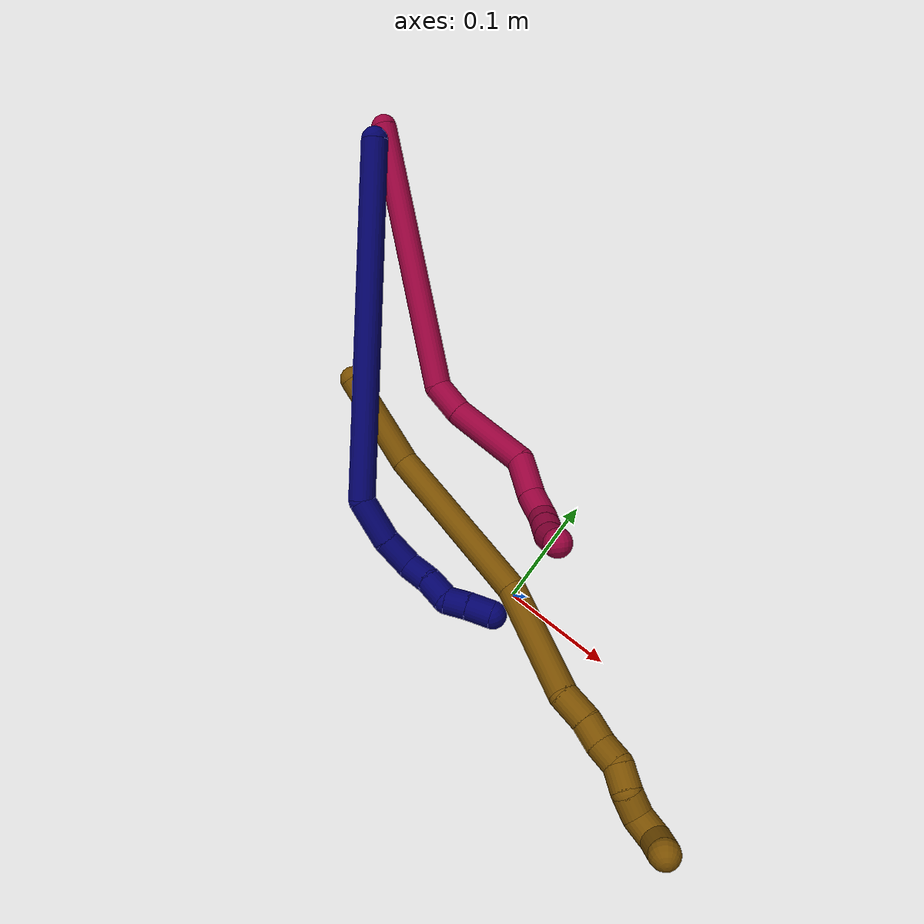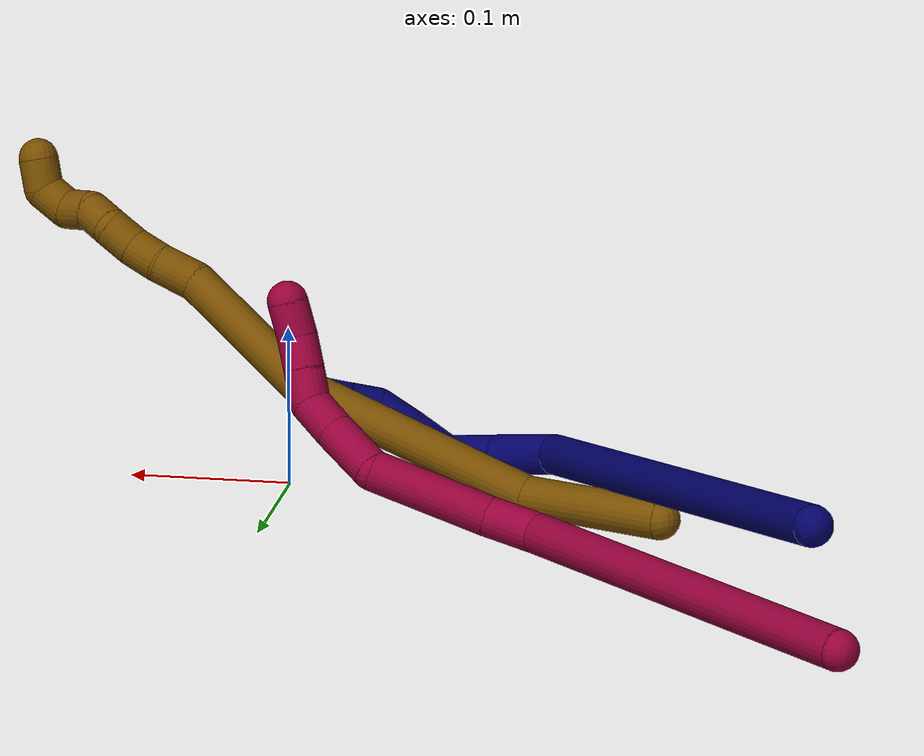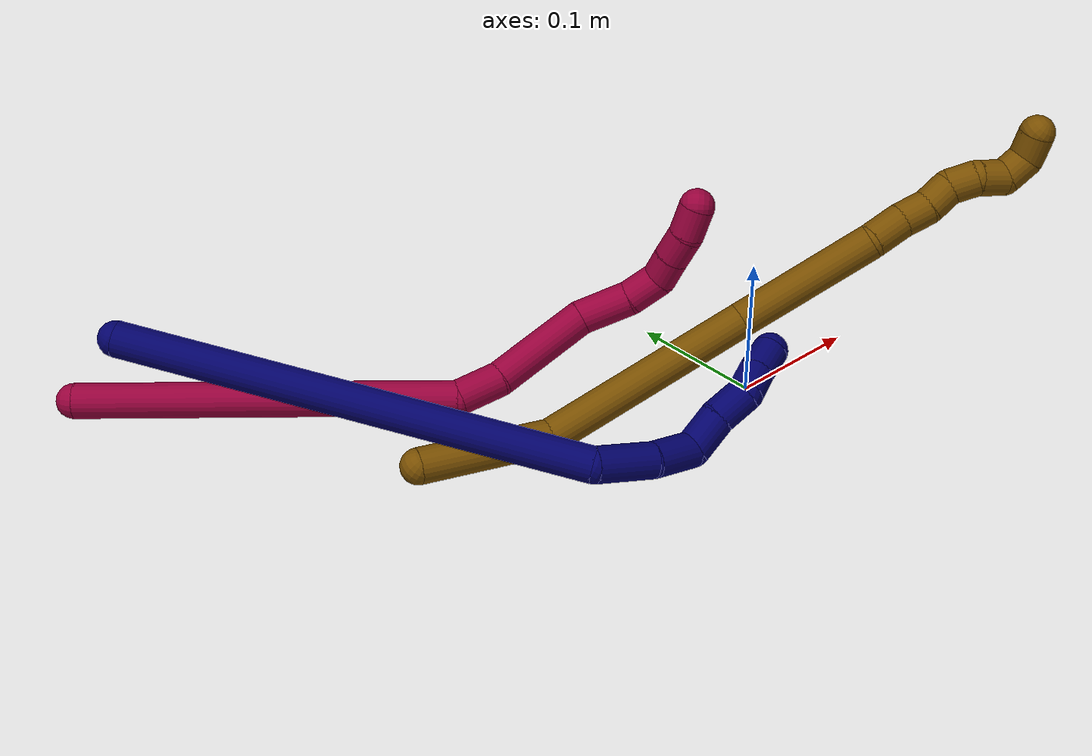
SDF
<sdf version="1.7">
 <world name="default">
  <model name="7">
   <static>0</static>
   <link name="7">
    <collision name="collision-cylinder-e_1_1_4">
     <pose>0.045998 -0.07493 -0.1396 2.64898 0.282554 1.02964</pose>
     <geometry><cylinder><radius>0.0125</radius><length>0.329962</length></cylinder></geometry>
     <surface>
      <friction><ode><mu>1.16</mu><mu2>1.16</mu2><slip1>0</slip1><slip2>0</slip2></ode></friction>
      <contact><ode><kp>1e+06</kp><kd>1</kd><max_vel>0</max_vel><min_depth>0.001</min_depth></ode></contact>
     </surface>
    </collision>
    <visual name="visual-cylinder-e_1_1_4">
     <pose>0.045998 -0.07493 -0.1396 2.64898 0.282554 1.02964</pose>
     <geometry><cylinder><radius>0.0125</radius><length>0.329962</length></cylinder></geometry>
     <material><ambient>0.003922 0 0.403922 1</ambient></material>
    </visual>
    <collision name="collision-cylinder-e_2_4_5">
     <pose>0.100212 -0.147637 -0.298729 -3.02824 0.39595 -2.5903</pose>
     <geometry><cylinder><radius>0.0125</radius><length>0.042604</length></cylinder></geometry>
     <surface>
      <friction><ode><mu>1.16</mu><mu2>1.16</mu2><slip1>0</slip1><slip2>0</slip2></ode></friction>
      <contact><ode><kp>1e+06</kp><kd>1</kd><max_vel>0</max_vel><min_depth>0.001</min_depth></ode></contact>
     </surface>
    </collision>
    <visual name="visual-cylinder-e_2_4_5">
     <pose>0.100212 -0.147637 -0.298729 -3.02824 0.39595 -2.5903</pose>
     <geometry><cylinder><radius>0.0125</radius><length>0.042604</length></cylinder></geometry>
     <material><ambient>0.003922 0 0.403922 1</ambient></material>
    </visual>
    <collision name="collision-cylinder-e_3_5_6">
     <pose>0.115374 -0.140673 -0.331936 -2.80797 0.447338 -1.8672</pose>
     <geometry><cylinder><radius>0.0125</radius><length>0.032116</length></cylinder></geometry>
     <surface>
      <friction><ode><mu>1.16</mu><mu2>1.16</mu2><slip1>0</slip1><slip2>0</slip2></ode></friction>
      <contact><ode><kp>1e+06</kp><kd>1</kd><max_vel>0</max_vel><min_depth>0.001</min_depth></ode></contact>
     </surface>
    </collision>
    <visual name="visual-cylinder-e_3_5_6">
     <pose>0.115374 -0.140673 -0.331936 -2.80797 0.447338 -1.8672</pose>
     <geometry><cylinder><radius>0.0125</radius><length>0.032116</length></cylinder></geometry>
     <material><ambient>0.003922 0 0.403922 1</ambient></material>
    </visual>
    <collision name="collision-cylinder-e_4_6_7">
     <pose>0.134811 -0.132087 -0.349988 -2.42034 1.13457 -2.07273</pose>
     <geometry><cylinder><radius>0.0125</radius><length>0.027562</length></cylinder></geometry>
     <surface>
      <friction><ode><mu>1.16</mu><mu2>1.16</mu2><slip1>0</slip1><slip2>0</slip2></ode></friction>
      <contact><ode><kp>1e+06</kp><kd>1</kd><max_vel>0</max_vel><min_depth>0.001</min_depth></ode></contact>
     </surface>
    </collision>
    <visual name="visual-cylinder-e_4_6_7">
     <pose>0.134811 -0.132087 -0.349988 -2.42034 1.13457 -2.07273</pose>
     <geometry><cylinder><radius>0.0125</radius><length>0.027562</length></cylinder></geometry>
     <material><ambient>0.003922 0 0.403922 1</ambient></material>
    </visual>
    <collision name="collision-cylinder-e_5_7_8">
     <pose>0.158105 -0.126242 -0.360172 -2.81011 1.05361 -2.58152</pose>
     <geometry><cylinder><radius>0.0125</radius><length>0.024857</length></cylinder></geometry>
     <surface>
      <friction><ode><mu>1.16</mu><mu2>1.16</mu2><slip1>0</slip1><slip2>0</slip2></ode></friction>
      <contact><ode><kp>1e+06</kp><kd>1</kd><max_vel>0</max_vel><min_depth>0.001</min_depth></ode></contact>
     </surface>
    </collision>
    <visual name="visual-cylinder-e_5_7_8">
     <pose>0.158105 -0.126242 -0.360172 -2.81011 1.05361 -2.58152</pose>
     <geometry><cylinder><radius>0.0125</radius><length>0.024857</length></cylinder></geometry>
     <material><ambient>0.003922 0 0.403922 1</ambient></material>
    </visual>
    <collision name="collision-cylinder-e_6_8_9">
     <pose>0.17516 -0.117279 -0.369776 -2.06961 0.667655 -1.05693</pose>
     <geometry><cylinder><radius>0.0125</radius><length>0.020195</length></cylinder></geometry>
     <surface>
      <friction><ode><mu>1.16</mu><mu2>1.16</mu2><slip1>0</slip1><slip2>0</slip2></ode></friction>
      <contact><ode><kp>1e+06</kp><kd>1</kd><max_vel>0</max_vel><min_depth>0.001</min_depth></ode></contact>
     </surface>
    </collision>
    <visual name="visual-cylinder-e_6_8_9">
     <pose>0.17516 -0.117279 -0.369776 -2.06961 0.667655 -1.05693</pose>
     <geometry><cylinder><radius>0.0125</radius><length>0.020195</length></cylinder></geometry>
     <material><ambient>0.003922 0 0.403922 1</ambient></material>
    </visual>
    <collision name="collision-cylinder-e_7_9_2">
     <pose>0.188668 -0.103071 -0.378439 -2.16261 0.693522 -1.19205</pose>
     <geometry><cylinder><radius>0.0125</radius><length>0.022704</length></cylinder></geometry>
     <surface>
      <friction><ode><mu>1.16</mu><mu2>1.16</mu2><slip1>0</slip1><slip2>0</slip2></ode></friction>
      <contact><ode><kp>1e+06</kp><kd>1</kd><max_vel>0</max_vel><min_depth>0.001</min_depth></ode></contact>
     </surface>
    </collision>
    <visual name="visual-cylinder-e_7_9_2">
     <pose>0.188668 -0.103071 -0.378439 -2.16261 0.693522 -1.19205</pose>
     <geometry><cylinder><radius>0.0125</radius><length>0.022704</length></cylinder></geometry>
     <material><ambient>0.003922 0 0.403922 1</ambient></material>
    </visual>
    <collision name="collision-sphere-2">
     <pose>0.195925 -0.095826 -0.383309 0 -0 0</pose>
     <geometry><sphere><radius>0.0125</radius></sphere></geometry>
     <surface>
      <friction><ode><mu>1.16</mu><mu2>1.16</mu2><slip1>0</slip1><slip2>0</slip2></ode></friction>
      <contact><ode><kp>1e+06</kp><kd>1</kd><max_vel>0</max_vel><min_depth>0.001</min_depth></ode></contact>
     </surface>
    </collision>
    <visual name="visual-sphere-2">
     <pose>0.195925 -0.095826 -0.383309 0 -0 0</pose>
     <geometry><sphere><radius>0.0125</radius></sphere></geometry>
     <material><ambient>0.003922 0 0.403922 1</ambient></material>
    </visual>
    <collision name="collision-sphere-9">
     <pose>0.181412 -0.110316 -0.373569 0 -0 0</pose>
     <geometry><sphere><radius>0.0125</radius></sphere></geometry>
     <surface>
      <friction><ode><mu>1.16</mu><mu2>1.16</mu2><slip1>0</slip1><slip2>0</slip2></ode></friction>
      <contact><ode><kp>1e+06</kp><kd>1</kd><max_vel>0</max_vel><min_depth>0.001</min_depth></ode></contact>
     </surface>
    </collision>
    <visual name="visual-sphere-9">
     <pose>0.181412 -0.110316 -0.373569 0 -0 0</pose>
     <geometry><sphere><radius>0.0125</radius></sphere></geometry>
     <material><ambient>0.003922 0 0.403922 1</ambient></material>
    </visual>
    <collision name="collision-sphere-4">
     <pose>0.091996 -0.14986 -0.279201 0 -0 0</pose>
     <geometry><sphere><radius>0.0125</radius></sphere></geometry>
     <surface>
      <friction><ode><mu>1.16</mu><mu2>1.16</mu2><slip1>0</slip1><slip2>0</slip2></ode></friction>
      <contact><ode><kp>1e+06</kp><kd>1</kd><max_vel>0</max_vel><min_depth>0.001</min_depth></ode></contact>
     </surface>
    </collision>
    <visual name="visual-sphere-4">
     <pose>0.091996 -0.14986 -0.279201 0 -0 0</pose>
     <geometry><sphere><radius>0.0125</radius></sphere></geometry>
     <material><ambient>0.003922 0 0.403922 1</ambient></material>
    </visual>
    <collision name="collision-sphere-1">
     <geometry><sphere><radius>0.0125</radius></sphere></geometry>
     <surface>
      <friction><ode><mu>1.16</mu><mu2>1.16</mu2><slip1>0</slip1><slip2>0</slip2></ode></friction>
      <contact><ode><kp>1e+06</kp><kd>1</kd><max_vel>0</max_vel><min_depth>0.001</min_depth></ode></contact>
     </surface>
    </collision>
    <visual name="visual-sphere-1">
     <geometry><sphere><radius>0.0125</radius></sphere></geometry>
     <material><ambient>0.003922 0 0.403922 1</ambient></material>
    </visual>
    <collision name="collision-sphere-8">
     <pose>0.168908 -0.124242 -0.365982 0 -0 0</pose>
     <geometry><sphere><radius>0.0125</radius></sphere></geometry>
     <surface>
      <friction><ode><mu>1.16</mu><mu2>1.16</mu2><slip1>0</slip1><slip2>0</slip2></ode></friction>
      <contact><ode><kp>1e+06</kp><kd>1</kd><max_vel>0</max_vel><min_depth>0.001</min_depth></ode></contact>
     </surface>
    </collision>
    <visual name="visual-sphere-8">
     <pose>0.168908 -0.124242 -0.365982 0 -0 0</pose>
     <geometry><sphere><radius>0.0125</radius></sphere></geometry>
     <material><ambient>0.003922 0 0.403922 1</ambient></material>
    </visual>
    <collision name="collision-sphere-5">
     <pose>0.108428 -0.145414 -0.318256 0 -0 0</pose>
     <geometry><sphere><radius>0.0125</radius></sphere></geometry>
     <surface>
      <friction><ode><mu>1.16</mu><mu2>1.16</mu2><slip1>0</slip1><slip2>0</slip2></ode></friction>
      <contact><ode><kp>1e+06</kp><kd>1</kd><max_vel>0</max_vel><min_depth>0.001</min_depth></ode></contact>
     </surface>
    </collision>
    <visual name="visual-sphere-5">
     <pose>0.108428 -0.145414 -0.318256 0 -0 0</pose>
     <geometry><sphere><radius>0.0125</radius></sphere></geometry>
     <material><ambient>0.003922 0 0.403922 1</ambient></material>
    </visual>
    <collision name="collision-sphere-6">
     <pose>0.12232 -0.135932 -0.345615 0 -0 0</pose>
     <geometry><sphere><radius>0.0125</radius></sphere></geometry>
     <surface>
      <friction><ode><mu>1.16</mu><mu2>1.16</mu2><slip1>0</slip1><slip2>0</slip2></ode></friction>
      <contact><ode><kp>1e+06</kp><kd>1</kd><max_vel>0</max_vel><min_depth>0.001</min_depth></ode></contact>
     </surface>
    </collision>
    <visual name="visual-sphere-6">
     <pose>0.12232 -0.135932 -0.345615 0 -0 0</pose>
     <geometry><sphere><radius>0.0125</radius></sphere></geometry>
     <material><ambient>0.003922 0 0.403922 1</ambient></material>
    </visual>
    <collision name="collision-sphere-7">
     <pose>0.147302 -0.128242 -0.354361 0 -0 0</pose>
     <geometry><sphere><radius>0.0125</radius></sphere></geometry>
     <surface>
      <friction><ode><mu>1.16</mu><mu2>1.16</mu2><slip1>0</slip1><slip2>0</slip2></ode></friction>
      <contact><ode><kp>1e+06</kp><kd>1</kd><max_vel>0</max_vel><min_depth>0.001</min_depth></ode></contact>
     </surface>
    </collision>
    <visual name="visual-sphere-7">
     <pose>0.147302 -0.128242 -0.354361 0 -0 0</pose>
     <geometry><sphere><radius>0.0125</radius></sphere></geometry>
     <material><ambient>0.003922 0 0.403922 1</ambient></material>
    </visual>
    <inertial>
     <pose>0.077238 -0.094038 -0.208219 0 -0 0</pose>
     <mass>0.5</mass>
     <inertia>
      <ixx>0.003958</ixx>
      <ixy>0</ixy>
      <ixz>0</ixz>
      <iyy>0.001445</iyy>
      <iyz>0</iyz>
      <izz>0.00048</izz>
     </inertia>
    </inertial>
   </link>
   <pose>-0.351417 0.249763 0.072847 -0.222383 -1.00512 -0.264132</pose>
  </model>
  <model name="8">
   <static>0</static>
   <link name="8">
    <collision name="collision-cylinder-e_1_1_4">
     <pose>0.011249 -0.006527 -0.132151 3.09225 0.084817 2.08805</pose>
     <geometry><cylinder><radius>0.0125</radius><length>0.265579</length></cylinder></geometry>
     <surface>
      <friction><ode><mu>1.16</mu><mu2>1.16</mu2><slip1>0</slip1><slip2>0</slip2></ode></friction>
      <contact><ode><kp>1e+06</kp><kd>1</kd><max_vel>0</max_vel><min_depth>0.001</min_depth></ode></contact>
     </surface>
    </collision>
    <visual name="visual-cylinder-e_1_1_4">
     <pose>0.011249 -0.006527 -0.132151 3.09225 0.084817 2.08805</pose>
     <geometry><cylinder><radius>0.0125</radius><length>0.265579</length></cylinder></geometry>
     <material><ambient>0.584314 0 0.227451 1</ambient></material>
    </visual>
    <collision name="collision-cylinder-e_2_4_5">
     <pose>0.031262 -0.014311 -0.277819 3.04883 0.573243 2.82921</pose>
     <geometry><cylinder><radius>0.0125</radius><length>0.032316</length></cylinder></geometry>
     <surface>
      <friction><ode><mu>1.16</mu><mu2>1.16</mu2><slip1>0</slip1><slip2>0</slip2></ode></friction>
      <contact><ode><kp>1e+06</kp><kd>1</kd><max_vel>0</max_vel><min_depth>0.001</min_depth></ode></contact>
     </surface>
    </collision>
    <visual name="visual-cylinder-e_2_4_5">
     <pose>0.031262 -0.014311 -0.277819 3.04883 0.573243 2.82921</pose>
     <geometry><cylinder><radius>0.0125</radius><length>0.032316</length></cylinder></geometry>
     <material><ambient>0.584314 0 0.227451 1</ambient></material>
    </visual>
    <collision name="collision-cylinder-e_3_5_6">
     <pose>0.066503 -0.020593 -0.317623 2.95271 0.780024 2.68864</pose>
     <geometry><cylinder><radius>0.0125</radius><length>0.075295</length></cylinder></geometry>
     <surface>
      <friction><ode><mu>1.16</mu><mu2>1.16</mu2><slip1>0</slip1><slip2>0</slip2></ode></friction>
      <contact><ode><kp>1e+06</kp><kd>1</kd><max_vel>0</max_vel><min_depth>0.001</min_depth></ode></contact>
     </surface>
    </collision>
    <visual name="visual-cylinder-e_3_5_6">
     <pose>0.066503 -0.020593 -0.317623 2.95271 0.780024 2.68864</pose>
     <geometry><cylinder><radius>0.0125</radius><length>0.075295</length></cylinder></geometry>
     <material><ambient>0.584314 0 0.227451 1</ambient></material>
    </visual>
    <collision name="collision-cylinder-e_4_6_7">
     <pose>0.097458 -0.033784 -0.360764 2.69043 0.234704 0.949131</pose>
     <geometry><cylinder><radius>0.0125</radius><length>0.038511</length></cylinder></geometry>
     <surface>
      <friction><ode><mu>1.16</mu><mu2>1.16</mu2><slip1>0</slip1><slip2>0</slip2></ode></friction>
      <contact><ode><kp>1e+06</kp><kd>1</kd><max_vel>0</max_vel><min_depth>0.001</min_depth></ode></contact>
     </surface>
    </collision>
    <visual name="visual-cylinder-e_4_6_7">
     <pose>0.097458 -0.033784 -0.360764 2.69043 0.234704 0.949131</pose>
     <geometry><cylinder><radius>0.0125</radius><length>0.038511</length></cylinder></geometry>
     <material><ambient>0.584314 0 0.227451 1</ambient></material>
    </visual>
    <collision name="collision-cylinder-e_5_7_8">
     <pose>0.106691 -0.048358 -0.387076 2.5461 0.39438 1.15423</pose>
     <geometry><cylinder><radius>0.0125</radius><length>0.024751</length></cylinder></geometry>
     <surface>
      <friction><ode><mu>1.16</mu><mu2>1.16</mu2><slip1>0</slip1><slip2>0</slip2></ode></friction>
      <contact><ode><kp>1e+06</kp><kd>1</kd><max_vel>0</max_vel><min_depth>0.001</min_depth></ode></contact>
     </surface>
    </collision>
    <visual name="visual-cylinder-e_5_7_8">
     <pose>0.106691 -0.048358 -0.387076 2.5461 0.39438 1.15423</pose>
     <geometry><cylinder><radius>0.0125</radius><length>0.024751</length></cylinder></geometry>
     <material><ambient>0.584314 0 0.227451 1</ambient></material>
    </visual>
    <collision name="collision-cylinder-e_6_8_9">
     <pose>0.113957 -0.06402 -0.400063 1.93501 0.248313 0.358384</pose>
     <geometry><cylinder><radius>0.0125</radius><length>0.020432</length></cylinder></geometry>
     <surface>
      <friction><ode><mu>1.16</mu><mu2>1.16</mu2><slip1>0</slip1><slip2>0</slip2></ode></friction>
      <contact><ode><kp>1e+06</kp><kd>1</kd><max_vel>0</max_vel><min_depth>0.001</min_depth></ode></contact>
     </surface>
    </collision>
    <visual name="visual-cylinder-e_6_8_9">
     <pose>0.113957 -0.06402 -0.400063 1.93501 0.248313 0.358384</pose>
     <geometry><cylinder><radius>0.0125</radius><length>0.020432</length></cylinder></geometry>
     <material><ambient>0.584314 0 0.227451 1</ambient></material>
    </visual>
    <collision name="collision-cylinder-e_7_9_10">
     <pose>0.11905 -0.082542 -0.407501 1.97004 0.251304 0.376283</pose>
     <geometry><cylinder><radius>0.0125</radius><length>0.020774</length></cylinder></geometry>
     <surface>
      <friction><ode><mu>1.16</mu><mu2>1.16</mu2><slip1>0</slip1><slip2>0</slip2></ode></friction>
      <contact><ode><kp>1e+06</kp><kd>1</kd><max_vel>0</max_vel><min_depth>0.001</min_depth></ode></contact>
     </surface>
    </collision>
    <visual name="visual-cylinder-e_7_9_10">
     <pose>0.11905 -0.082542 -0.407501 1.97004 0.251304 0.376283</pose>
     <geometry><cylinder><radius>0.0125</radius><length>0.020774</length></cylinder></geometry>
     <material><ambient>0.584314 0 0.227451 1</ambient></material>
    </visual>
    <collision name="collision-cylinder-e_8_10_2">
     <pose>0.126386 -0.10159 -0.413979 1.82755 0.439434 0.563636</pose>
     <geometry><cylinder><radius>0.0125</radius><length>0.022343</length></cylinder></geometry>
     <surface>
      <friction><ode><mu>1.16</mu><mu2>1.16</mu2><slip1>0</slip1><slip2>0</slip2></ode></friction>
      <contact><ode><kp>1e+06</kp><kd>1</kd><max_vel>0</max_vel><min_depth>0.001</min_depth></ode></contact>
     </surface>
    </collision>
    <visual name="visual-cylinder-e_8_10_2">
     <pose>0.126386 -0.10159 -0.413979 1.82755 0.439434 0.563636</pose>
     <geometry><cylinder><radius>0.0125</radius><length>0.022343</length></cylinder></geometry>
     <material><ambient>0.584314 0 0.227451 1</ambient></material>
    </visual>
    <collision name="collision-sphere-2">
     <pose>0.131139 -0.111369 -0.416546 0 -0 0</pose>
     <geometry><sphere><radius>0.0125</radius></sphere></geometry>
     <surface>
      <friction><ode><mu>1.16</mu><mu2>1.16</mu2><slip1>0</slip1><slip2>0</slip2></ode></friction>
      <contact><ode><kp>1e+06</kp><kd>1</kd><max_vel>0</max_vel><min_depth>0.001</min_depth></ode></contact>
     </surface>
    </collision>
    <visual name="visual-sphere-2">
     <pose>0.131139 -0.111369 -0.416546 0 -0 0</pose>
     <geometry><sphere><radius>0.0125</radius></sphere></geometry>
     <material><ambient>0.584314 0 0.227451 1</ambient></material>
    </visual>
    <collision name="collision-sphere-10">
     <pose>0.121633 -0.091811 -0.411412 0 -0 0</pose>
     <geometry><sphere><radius>0.0125</radius></sphere></geometry>
     <surface>
      <friction><ode><mu>1.16</mu><mu2>1.16</mu2><slip1>0</slip1><slip2>0</slip2></ode></friction>
      <contact><ode><kp>1e+06</kp><kd>1</kd><max_vel>0</max_vel><min_depth>0.001</min_depth></ode></contact>
     </surface>
    </collision>
    <visual name="visual-sphere-10">
     <pose>0.121633 -0.091811 -0.411412 0 -0 0</pose>
     <geometry><sphere><radius>0.0125</radius></sphere></geometry>
     <material><ambient>0.584314 0 0.227451 1</ambient></material>
    </visual>
    <collision name="collision-sphere-9">
     <pose>0.116467 -0.073273 -0.40359 0 -0 0</pose>
     <geometry><sphere><radius>0.0125</radius></sphere></geometry>
     <surface>
      <friction><ode><mu>1.16</mu><mu2>1.16</mu2><slip1>0</slip1><slip2>0</slip2></ode></friction>
      <contact><ode><kp>1e+06</kp><kd>1</kd><max_vel>0</max_vel><min_depth>0.001</min_depth></ode></contact>
     </surface>
    </collision>
    <visual name="visual-sphere-9">
     <pose>0.116467 -0.073273 -0.40359 0 -0 0</pose>
     <geometry><sphere><radius>0.0125</radius></sphere></geometry>
     <material><ambient>0.584314 0 0.227451 1</ambient></material>
    </visual>
    <collision name="collision-sphere-4">
     <pose>0.022499 -0.013053 -0.264302 0 -0 0</pose>
     <geometry><sphere><radius>0.0125</radius></sphere></geometry>
     <surface>
      <friction><ode><mu>1.16</mu><mu2>1.16</mu2><slip1>0</slip1><slip2>0</slip2></ode></friction>
      <contact><ode><kp>1e+06</kp><kd>1</kd><max_vel>0</max_vel><min_depth>0.001</min_depth></ode></contact>
     </surface>
    </collision>
    <visual name="visual-sphere-4">
     <pose>0.022499 -0.013053 -0.264302 0 -0 0</pose>
     <geometry><sphere><radius>0.0125</radius></sphere></geometry>
     <material><ambient>0.584314 0 0.227451 1</ambient></material>
    </visual>
    <collision name="collision-sphere-1">
     <geometry><sphere><radius>0.0125</radius></sphere></geometry>
     <surface>
      <friction><ode><mu>1.16</mu><mu2>1.16</mu2><slip1>0</slip1><slip2>0</slip2></ode></friction>
      <contact><ode><kp>1e+06</kp><kd>1</kd><max_vel>0</max_vel><min_depth>0.001</min_depth></ode></contact>
     </surface>
    </collision>
    <visual name="visual-sphere-1">
     <geometry><sphere><radius>0.0125</radius></sphere></geometry>
     <material><ambient>0.584314 0 0.227451 1</ambient></material>
    </visual>
    <collision name="collision-sphere-8">
     <pose>0.111446 -0.054767 -0.396535 0 -0 0</pose>
     <geometry><sphere><radius>0.0125</radius></sphere></geometry>
     <surface>
      <friction><ode><mu>1.16</mu><mu2>1.16</mu2><slip1>0</slip1><slip2>0</slip2></ode></friction>
      <contact><ode><kp>1e+06</kp><kd>1</kd><max_vel>0</max_vel><min_depth>0.001</min_depth></ode></contact>
     </surface>
    </collision>
    <visual name="visual-sphere-8">
     <pose>0.111446 -0.054767 -0.396535 0 -0 0</pose>
     <geometry><sphere><radius>0.0125</radius></sphere></geometry>
     <material><ambient>0.584314 0 0.227451 1</ambient></material>
    </visual>
    <collision name="collision-sphere-5">
     <pose>0.040025 -0.015568 -0.291336 0 -0 0</pose>
     <geometry><sphere><radius>0.0125</radius></sphere></geometry>
     <surface>
      <friction><ode><mu>1.16</mu><mu2>1.16</mu2><slip1>0</slip1><slip2>0</slip2></ode></friction>
      <contact><ode><kp>1e+06</kp><kd>1</kd><max_vel>0</max_vel><min_depth>0.001</min_depth></ode></contact>
     </surface>
    </collision>
    <visual name="visual-sphere-5">
     <pose>0.040025 -0.015568 -0.291336 0 -0 0</pose>
     <geometry><sphere><radius>0.0125</radius></sphere></geometry>
     <material><ambient>0.584314 0 0.227451 1</ambient></material>
    </visual>
    <collision name="collision-sphere-6">
     <pose>0.09298 -0.025618 -0.34391 0 -0 0</pose>
     <geometry><sphere><radius>0.0125</radius></sphere></geometry>
     <surface>
      <friction><ode><mu>1.16</mu><mu2>1.16</mu2><slip1>0</slip1><slip2>0</slip2></ode></friction>
      <contact><ode><kp>1e+06</kp><kd>1</kd><max_vel>0</max_vel><min_depth>0.001</min_depth></ode></contact>
     </surface>
    </collision>
    <visual name="visual-sphere-6">
     <pose>0.09298 -0.025618 -0.34391 0 -0 0</pose>
     <geometry><sphere><radius>0.0125</radius></sphere></geometry>
     <material><ambient>0.584314 0 0.227451 1</ambient></material>
    </visual>
    <collision name="collision-sphere-7">
     <pose>0.101936 -0.041949 -0.377617 0 -0 0</pose>
     <geometry><sphere><radius>0.0125</radius></sphere></geometry>
     <surface>
      <friction><ode><mu>1.16</mu><mu2>1.16</mu2><slip1>0</slip1><slip2>0</slip2></ode></friction>
      <contact><ode><kp>1e+06</kp><kd>1</kd><max_vel>0</max_vel><min_depth>0.001</min_depth></ode></contact>
     </surface>
    </collision>
    <visual name="visual-sphere-7">
     <pose>0.101936 -0.041949 -0.377617 0 -0 0</pose>
     <geometry><sphere><radius>0.0125</radius></sphere></geometry>
     <material><ambient>0.584314 0 0.227451 1</ambient></material>
    </visual>
    <inertial>
     <pose>0.046049 -0.023074 -0.234705 0 -0 0</pose>
     <mass>0.5</mass>
     <inertia>
      <ixx>0.000599</ixx>
      <ixy>0</ixy>
      <ixz>0</ixz>
      <iyy>0.002192</iyy>
      <iyz>0</iyz>
      <izz>-0.000108</izz>
     </inertia>
    </inertial>
   </link>
   <pose>-0.371384 0.287418 0.012396 -1.49566 -0.337386 0.760102</pose>
  </model>
  <model name="12">
   <static>0</static>
   <link name="12">
    <collision name="collision-cylinder-e_1_1_4">
     <pose>0.036382 -0.020787 0.01935 0.821199 0.908015 0.418677</pose>
     <geometry><cylinder><radius>0.0125</radius><length>0.092308</length></cylinder></geometry>
     <surface>
      <friction><ode><mu>1.16</mu><mu2>1.16</mu2><slip1>0</slip1><slip2>0</slip2></ode></friction>
      <contact><ode><kp>1e+06</kp><kd>1</kd><max_vel>0</max_vel><min_depth>0.001</min_depth></ode></contact>
     </surface>
    </collision>
    <visual name="visual-cylinder-e_1_1_4">
     <pose>0.036382 -0.020787 0.01935 0.821199 0.908015 0.418677</pose>
     <geometry><cylinder><radius>0.0125</radius><length>0.092308</length></cylinder></geometry>
     <material><ambient>0.466667 0.301961 0 1</ambient></material>
    </visual>
    <collision name="collision-cylinder-e_2_4_5">
     <pose>0.132174 -0.055715 0.087793 0.280448 0.860545 0.129381</pose>
     <geometry><cylinder><radius>0.0125</radius><length>0.156712</length></cylinder></geometry>
     <surface>
      <friction><ode><mu>1.16</mu><mu2>1.16</mu2><slip1>0</slip1><slip2>0</slip2></ode></friction>
      <contact><ode><kp>1e+06</kp><kd>1</kd><max_vel>0</max_vel><min_depth>0.001</min_depth></ode></contact>
     </surface>
    </collision>
    <visual name="visual-cylinder-e_2_4_5">
     <pose>0.132174 -0.055715 0.087793 0.280448 0.860545 0.129381</pose>
     <geometry><cylinder><radius>0.0125</radius><length>0.156712</length></cylinder></geometry>
     <material><ambient>0.466667 0.301961 0 1</ambient></material>
    </visual>
    <collision name="collision-cylinder-e_3_5_6">
     <pose>0.217836 -0.081525 0.180027 0.264164 0.53114 0.072241</pose>
     <geometry><cylinder><radius>0.0125</radius><length>0.103662</length></cylinder></geometry>
     <surface>
      <friction><ode><mu>1.16</mu><mu2>1.16</mu2><slip1>0</slip1><slip2>0</slip2></ode></friction>
      <contact><ode><kp>1e+06</kp><kd>1</kd><max_vel>0</max_vel><min_depth>0.001</min_depth></ode></contact>
     </surface>
    </collision>
    <visual name="visual-cylinder-e_3_5_6">
     <pose>0.217836 -0.081525 0.180027 0.264164 0.53114 0.072241</pose>
     <geometry><cylinder><radius>0.0125</radius><length>0.103662</length></cylinder></geometry>
     <material><ambient>0.466667 0.301961 0 1</ambient></material>
    </visual>
    <collision name="collision-cylinder-e_4_6_7">
     <pose>0.25405 -0.094825 0.231509 0.193075 0.864299 0.089269</pose>
     <geometry><cylinder><radius>0.0125</radius><length>0.026188</length></cylinder></geometry>
     <surface>
      <friction><ode><mu>1.16</mu><mu2>1.16</mu2><slip1>0</slip1><slip2>0</slip2></ode></friction>
      <contact><ode><kp>1e+06</kp><kd>1</kd><max_vel>0</max_vel><min_depth>0.001</min_depth></ode></contact>
     </surface>
    </collision>
    <visual name="visual-cylinder-e_4_6_7">
     <pose>0.25405 -0.094825 0.231509 0.193075 0.864299 0.089269</pose>
     <geometry><cylinder><radius>0.0125</radius><length>0.026188</length></cylinder></geometry>
     <material><ambient>0.466667 0.301961 0 1</ambient></material>
    </visual>
    <collision name="collision-cylinder-e_5_7_8">
     <pose>0.270924 -0.099257 0.247314 0.359129 0.714544 0.135313</pose>
     <geometry><cylinder><radius>0.0125</radius><length>0.021104</length></cylinder></geometry>
     <surface>
      <friction><ode><mu>1.16</mu><mu2>1.16</mu2><slip1>0</slip1><slip2>0</slip2></ode></friction>
      <contact><ode><kp>1e+06</kp><kd>1</kd><max_vel>0</max_vel><min_depth>0.001</min_depth></ode></contact>
     </surface>
    </collision>
    <visual name="visual-cylinder-e_5_7_8">
     <pose>0.270924 -0.099257 0.247314 0.359129 0.714544 0.135313</pose>
     <geometry><cylinder><radius>0.0125</radius><length>0.021104</length></cylinder></geometry>
     <material><ambient>0.466667 0.301961 0 1</ambient></material>
    </visual>
    <collision name="collision-cylinder-e_6_8_9">
     <pose>0.284077 -0.102107 0.262606 0.006219 0.672776 0.002175</pose>
     <geometry><cylinder><radius>0.0125</radius><length>0.020021</length></cylinder></geometry>
     <surface>
      <friction><ode><mu>1.16</mu><mu2>1.16</mu2><slip1>0</slip1><slip2>0</slip2></ode></friction>
      <contact><ode><kp>1e+06</kp><kd>1</kd><max_vel>0</max_vel><min_depth>0.001</min_depth></ode></contact>
     </surface>
    </collision>
    <visual name="visual-cylinder-e_6_8_9">
     <pose>0.284077 -0.102107 0.262606 0.006219 0.672776 0.002175</pose>
     <geometry><cylinder><radius>0.0125</radius><length>0.020021</length></cylinder></geometry>
     <material><ambient>0.466667 0.301961 0 1</ambient></material>
    </visual>
    <collision name="collision-cylinder-e_7_9_10">
     <pose>0.295057 -0.106662 0.278002 0.5371 0.493893 0.138528</pose>
     <geometry><cylinder><radius>0.0125</radius><length>0.020005</length></cylinder></geometry>
     <surface>
      <friction><ode><mu>1.16</mu><mu2>1.16</mu2><slip1>0</slip1><slip2>0</slip2></ode></friction>
      <contact><ode><kp>1e+06</kp><kd>1</kd><max_vel>0</max_vel><min_depth>0.001</min_depth></ode></contact>
     </surface>
    </collision>
    <visual name="visual-cylinder-e_7_9_10">
     <pose>0.295057 -0.106662 0.278002 0.5371 0.493893 0.138528</pose>
     <geometry><cylinder><radius>0.0125</radius><length>0.020005</length></cylinder></geometry>
     <material><ambient>0.466667 0.301961 0 1</ambient></material>
    </visual>
    <collision name="collision-cylinder-e_8_10_11">
     <pose>0.306942 -0.117112 0.289261 1.01497 0.795742 0.45917</pose>
     <geometry><cylinder><radius>0.0125</radius><length>0.02</length></cylinder></geometry>
     <surface>
      <friction><ode><mu>1.16</mu><mu2>1.16</mu2><slip1>0</slip1><slip2>0</slip2></ode></friction>
      <contact><ode><kp>1e+06</kp><kd>1</kd><max_vel>0</max_vel><min_depth>0.001</min_depth></ode></contact>
     </surface>
    </collision>
    <visual name="visual-cylinder-e_8_10_11">
     <pose>0.306942 -0.117112 0.289261 1.01497 0.795742 0.45917</pose>
     <geometry><cylinder><radius>0.0125</radius><length>0.02</length></cylinder></geometry>
     <material><ambient>0.466667 0.301961 0 1</ambient></material>
    </visual>
    <collision name="collision-cylinder-e_9_11_12">
     <pose>0.320272 -0.123503 0.300797 0.056879 0.666988 0.019709</pose>
     <geometry><cylinder><radius>0.0125</radius><length>0.02</length></cylinder></geometry>
     <surface>
      <friction><ode><mu>1.16</mu><mu2>1.16</mu2><slip1>0</slip1><slip2>0</slip2></ode></friction>
      <contact><ode><kp>1e+06</kp><kd>1</kd><max_vel>0</max_vel><min_depth>0.001</min_depth></ode></contact>
     </surface>
    </collision>
    <visual name="visual-cylinder-e_9_11_12">
     <pose>0.320272 -0.123503 0.300797 0.056879 0.666988 0.019709</pose>
     <geometry><cylinder><radius>0.0125</radius><length>0.02</length></cylinder></geometry>
     <material><ambient>0.466667 0.301961 0 1</ambient></material>
    </visual>
    <collision name="collision-cylinder-e_10_12_2">
     <pose>0.326395 -0.120645 0.31808 -0.336791 -0.006384 0.001085</pose>
     <geometry><cylinder><radius>0.0125</radius><length>0.02</length></cylinder></geometry>
     <surface>
      <friction><ode><mu>1.16</mu><mu2>1.16</mu2><slip1>0</slip1><slip2>0</slip2></ode></friction>
      <contact><ode><kp>1e+06</kp><kd>1</kd><max_vel>0</max_vel><min_depth>0.001</min_depth></ode></contact>
     </surface>
    </collision>
    <visual name="visual-cylinder-e_10_12_2">
     <pose>0.326395 -0.120645 0.31808 -0.336791 -0.006384 0.001085</pose>
     <geometry><cylinder><radius>0.0125</radius><length>0.02</length></cylinder></geometry>
     <material><ambient>0.466667 0.301961 0 1</ambient></material>
    </visual>
    <collision name="collision-sphere-2">
     <pose>0.326331 -0.117341 0.327518 0 -0 0</pose>
     <geometry><sphere><radius>0.0125</radius></sphere></geometry>
     <surface>
      <friction><ode><mu>1.16</mu><mu2>1.16</mu2><slip1>0</slip1><slip2>0</slip2></ode></friction>
      <contact><ode><kp>1e+06</kp><kd>1</kd><max_vel>0</max_vel><min_depth>0.001</min_depth></ode></contact>
     </surface>
    </collision>
    <visual name="visual-sphere-2">
     <pose>0.326331 -0.117341 0.327518 0 -0 0</pose>
     <geometry><sphere><radius>0.0125</radius></sphere></geometry>
     <material><ambient>0.466667 0.301961 0 1</ambient></material>
    </visual>
    <collision name="collision-sphere-12">
     <pose>0.326459 -0.12395 0.308642 0 -0 0</pose>
     <geometry><sphere><radius>0.0125</radius></sphere></geometry>
     <surface>
      <friction><ode><mu>1.16</mu><mu2>1.16</mu2><slip1>0</slip1><slip2>0</slip2></ode></friction>
      <contact><ode><kp>1e+06</kp><kd>1</kd><max_vel>0</max_vel><min_depth>0.001</min_depth></ode></contact>
     </surface>
    </collision>
    <visual name="visual-sphere-12">
     <pose>0.326459 -0.12395 0.308642 0 -0 0</pose>
     <geometry><sphere><radius>0.0125</radius></sphere></geometry>
     <material><ambient>0.466667 0.301961 0 1</ambient></material>
    </visual>
    <collision name="collision-sphere-11">
     <pose>0.314086 -0.123057 0.292953 0 -0 0</pose>
     <geometry><sphere><radius>0.0125</radius></sphere></geometry>
     <surface>
      <friction><ode><mu>1.16</mu><mu2>1.16</mu2><slip1>0</slip1><slip2>0</slip2></ode></friction>
      <contact><ode><kp>1e+06</kp><kd>1</kd><max_vel>0</max_vel><min_depth>0.001</min_depth></ode></contact>
     </surface>
    </collision>
    <visual name="visual-sphere-11">
     <pose>0.314086 -0.123057 0.292953 0 -0 0</pose>
     <geometry><sphere><radius>0.0125</radius></sphere></geometry>
     <material><ambient>0.466667 0.301961 0 1</ambient></material>
    </visual>
    <collision name="collision-sphere-10">
     <pose>0.299798 -0.111168 0.285569 0 -0 0</pose>
     <geometry><sphere><radius>0.0125</radius></sphere></geometry>
     <surface>
      <friction><ode><mu>1.16</mu><mu2>1.16</mu2><slip1>0</slip1><slip2>0</slip2></ode></friction>
      <contact><ode><kp>1e+06</kp><kd>1</kd><max_vel>0</max_vel><min_depth>0.001</min_depth></ode></contact>
     </surface>
    </collision>
    <visual name="visual-sphere-10">
     <pose>0.299798 -0.111168 0.285569 0 -0 0</pose>
     <geometry><sphere><radius>0.0125</radius></sphere></geometry>
     <material><ambient>0.466667 0.301961 0 1</ambient></material>
    </visual>
    <collision name="collision-sphere-9">
     <pose>0.290315 -0.102156 0.270435 0 -0 0</pose>
     <geometry><sphere><radius>0.0125</radius></sphere></geometry>
     <surface>
      <friction><ode><mu>1.16</mu><mu2>1.16</mu2><slip1>0</slip1><slip2>0</slip2></ode></friction>
      <contact><ode><kp>1e+06</kp><kd>1</kd><max_vel>0</max_vel><min_depth>0.001</min_depth></ode></contact>
     </surface>
    </collision>
    <visual name="visual-sphere-9">
     <pose>0.290315 -0.102156 0.270435 0 -0 0</pose>
     <geometry><sphere><radius>0.0125</radius></sphere></geometry>
     <material><ambient>0.466667 0.301961 0 1</ambient></material>
    </visual>
    <collision name="collision-sphere-4">
     <pose>0.072765 -0.041574 0.038699 0 -0 0</pose>
     <geometry><sphere><radius>0.0125</radius></sphere></geometry>
     <surface>
      <friction><ode><mu>1.16</mu><mu2>1.16</mu2><slip1>0</slip1><slip2>0</slip2></ode></friction>
      <contact><ode><kp>1e+06</kp><kd>1</kd><max_vel>0</max_vel><min_depth>0.001</min_depth></ode></contact>
     </surface>
    </collision>
    <visual name="visual-sphere-4">
     <pose>0.072765 -0.041574 0.038699 0 -0 0</pose>
     <geometry><sphere><radius>0.0125</radius></sphere></geometry>
     <material><ambient>0.466667 0.301961 0 1</ambient></material>
    </visual>
    <collision name="collision-sphere-1">
     <geometry><sphere><radius>0.0125</radius></sphere></geometry>
     <surface>
      <friction><ode><mu>1.16</mu><mu2>1.16</mu2><slip1>0</slip1><slip2>0</slip2></ode></friction>
      <contact><ode><kp>1e+06</kp><kd>1</kd><max_vel>0</max_vel><min_depth>0.001</min_depth></ode></contact>
     </surface>
    </collision>
    <visual name="visual-sphere-1">
     <geometry><sphere><radius>0.0125</radius></sphere></geometry>
     <material><ambient>0.466667 0.301961 0 1</ambient></material>
    </visual>
    <collision name="collision-sphere-8">
     <pose>0.277839 -0.102058 0.254777 0 -0 0</pose>
     <geometry><sphere><radius>0.0125</radius></sphere></geometry>
     <surface>
      <friction><ode><mu>1.16</mu><mu2>1.16</mu2><slip1>0</slip1><slip2>0</slip2></ode></friction>
      <contact><ode><kp>1e+06</kp><kd>1</kd><max_vel>0</max_vel><min_depth>0.001</min_depth></ode></contact>
     </surface>
    </collision>
    <visual name="visual-sphere-8">
     <pose>0.277839 -0.102058 0.254777 0 -0 0</pose>
     <geometry><sphere><radius>0.0125</radius></sphere></geometry>
     <material><ambient>0.466667 0.301961 0 1</ambient></material>
    </visual>
    <collision name="collision-sphere-5">
     <pose>0.191583 -0.069856 0.136887 0 -0 0</pose>
     <geometry><sphere><radius>0.0125</radius></sphere></geometry>
     <surface>
      <friction><ode><mu>1.16</mu><mu2>1.16</mu2><slip1>0</slip1><slip2>0</slip2></ode></friction>
      <contact><ode><kp>1e+06</kp><kd>1</kd><max_vel>0</max_vel><min_depth>0.001</min_depth></ode></contact>
     </surface>
    </collision>
    <visual name="visual-sphere-5">
     <pose>0.191583 -0.069856 0.136887 0 -0 0</pose>
     <geometry><sphere><radius>0.0125</radius></sphere></geometry>
     <material><ambient>0.466667 0.301961 0 1</ambient></material>
    </visual>
    <collision name="collision-sphere-6">
     <pose>0.24409 -0.093194 0.223167 0 -0 0</pose>
     <geometry><sphere><radius>0.0125</radius></sphere></geometry>
     <surface>
      <friction><ode><mu>1.16</mu><mu2>1.16</mu2><slip1>0</slip1><slip2>0</slip2></ode></friction>
      <contact><ode><kp>1e+06</kp><kd>1</kd><max_vel>0</max_vel><min_depth>0.001</min_depth></ode></contact>
     </surface>
    </collision>
    <visual name="visual-sphere-6">
     <pose>0.24409 -0.093194 0.223167 0 -0 0</pose>
     <geometry><sphere><radius>0.0125</radius></sphere></geometry>
     <material><ambient>0.466667 0.301961 0 1</ambient></material>
    </visual>
    <collision name="collision-sphere-7">
     <pose>0.26401 -0.096456 0.239852 0 -0 0</pose>
     <geometry><sphere><radius>0.0125</radius></sphere></geometry>
     <surface>
      <friction><ode><mu>1.16</mu><mu2>1.16</mu2><slip1>0</slip1><slip2>0</slip2></ode></friction>
      <contact><ode><kp>1e+06</kp><kd>1</kd><max_vel>0</max_vel><min_depth>0.001</min_depth></ode></contact>
     </surface>
    </collision>
    <visual name="visual-sphere-7">
     <pose>0.26401 -0.096456 0.239852 0 -0 0</pose>
     <geometry><sphere><radius>0.0125</radius></sphere></geometry>
     <material><ambient>0.466667 0.301961 0 1</ambient></material>
    </visual>
    <inertial>
     <pose>0.179372 -0.070165 0.148941 0 -0 0</pose>
     <mass>0.5</mass>
     <inertia>
      <ixx>0.00042</ixx>
      <ixy>0</ixy>
      <ixz>0</ixz>
      <iyy>0.000527</iyy>
      <iyz>0</iyz>
      <izz>-0.000218</izz>
     </inertia>
    </inertial>
   </link>
   <pose>-0.240466 0.069543 0.012163 0.551383 0.156416 0.284318</pose>
  </model>
 </world>
</sdf>
